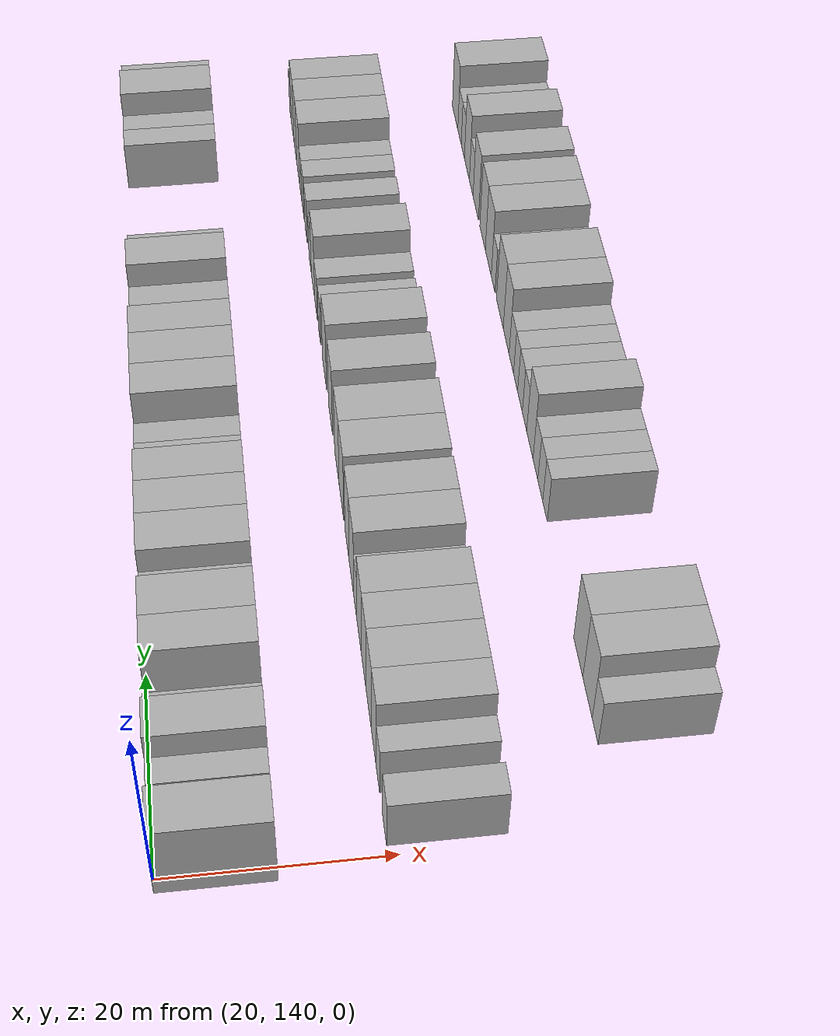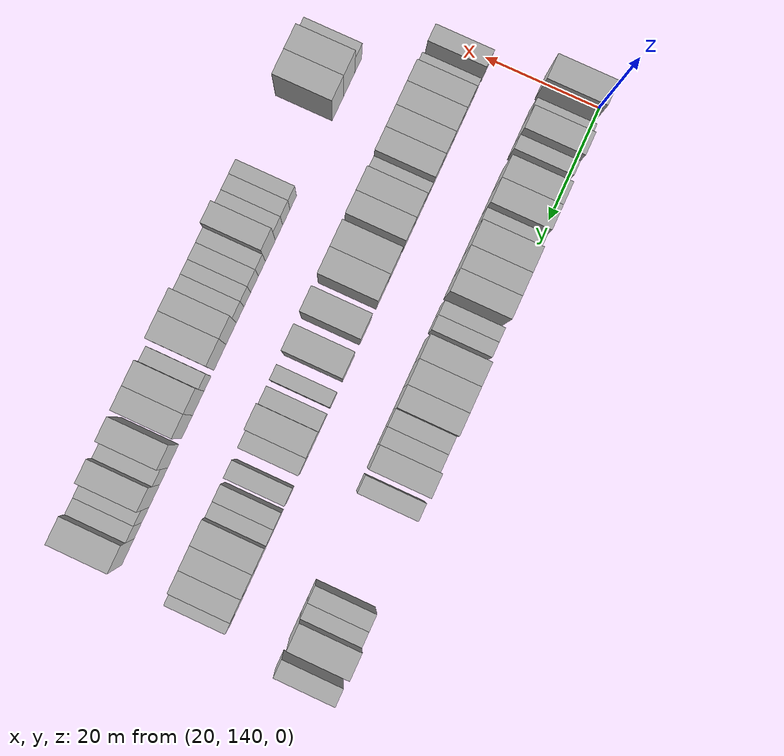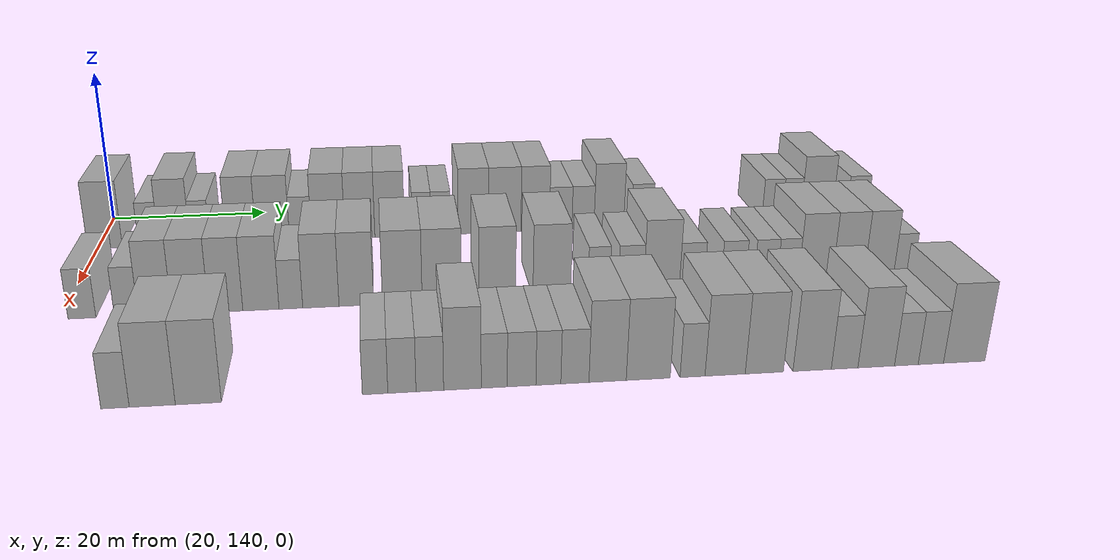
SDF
<sdf version="1.6">
 <world name="default">
  <model name="building_97">
   <static>1</static>
   <pose>25.0000 140.9379 0 0.000000 0.000000 0.000000</pose>
   <link name="link">
    <pose>0 0 4.50 0 0 0</pose>
    <collision name="collision"><geometry><box><size>10.0000 4.2865 9.0000</size></box></geometry></collision>
    <visual name="visual">
     <cast_shadows>0</cast_shadows>
     <geometry><box><size>10.0000 4.2865 9.0000</size></box></geometry>
     <material>
      <script>
       <uri>model://HANNAS_wall/materials/scripts</uri>
       <uri>model://HANNAS_wall/materials/textures</uri>
       <name>vrc/HANNAS_wall</name>
      </script>
     </material>
    </visual>
   </link>
  </model>
  <model name="building_98">
   <static>1</static>
   <pose>25.0000 146.3305 0 0.000000 0.000000 0.000000</pose>
   <link name="link">
    <pose>0 0 3.00 0 0 0</pose>
    <collision name="collision"><geometry><box><size>10.0000 2.4988 6.0000</size></box></geometry></collision>
    <visual name="visual">
     <cast_shadows>0</cast_shadows>
     <geometry><box><size>10.0000 2.4988 6.0000</size></box></geometry>
     <material>
      <script>
       <uri>model://HANNAS_wall/materials/scripts</uri>
       <uri>model://HANNAS_wall/materials/textures</uri>
       <name>vrc/HANNAS_wall</name>
      </script>
     </material>
    </visual>
   </link>
  </model>
  <model name="building_99">
   <static>1</static>
   <pose>25.0000 149.5298 0 0.000000 0.000000 0.000000</pose>
   <link name="link">
    <pose>0 0 4.50 0 0 0</pose>
    <collision name="collision"><geometry><box><size>10.0000 3.8998 9.0000</size></box></geometry></collision>
    <visual name="visual">
     <cast_shadows>0</cast_shadows>
     <geometry><box><size>10.0000 3.8998 9.0000</size></box></geometry>
     <material>
      <script>
       <uri>model://HANNAS_wall/materials/scripts</uri>
       <uri>model://HANNAS_wall/materials/textures</uri>
       <name>vrc/HANNAS_wall</name>
      </script>
     </material>
    </visual>
   </link>
  </model>
  <model name="building_100">
   <static>1</static>
   <pose>25.0000 152.7077 0 0.000000 0.000000 0.000000</pose>
   <link name="link">
    <pose>0 0 3.00 0 0 0</pose>
    <collision name="collision"><geometry><box><size>10.0000 2.4560 6.0000</size></box></geometry></collision>
    <visual name="visual">
     <cast_shadows>0</cast_shadows>
     <geometry><box><size>10.0000 2.4560 6.0000</size></box></geometry>
     <material>
      <script>
       <uri>model://HANNAS_wall/materials/scripts</uri>
       <uri>model://HANNAS_wall/materials/textures</uri>
       <name>vrc/HANNAS_wall</name>
      </script>
     </material>
    </visual>
   </link>
  </model>
  <model name="building_101">
   <static>1</static>
   <pose>25.0000 157.8451 0 0.000000 0.000000 0.000000</pose>
   <link name="link">
    <pose>0 0 4.50 0 0 0</pose>
    <collision name="collision"><geometry><box><size>10.0000 3.8187 9.0000</size></box></geometry></collision>
    <visual name="visual">
     <cast_shadows>0</cast_shadows>
     <geometry><box><size>10.0000 3.8187 9.0000</size></box></geometry>
     <material>
      <script>
       <uri>model://HANNAS_wall/materials/scripts</uri>
       <uri>model://HANNAS_wall/materials/textures</uri>
       <name>vrc/HANNAS_wall</name>
      </script>
     </material>
    </visual>
   </link>
  </model>
  <model name="building_102">
   <static>1</static>
   <pose>25.0000 161.8650 0 0.000000 0.000000 0.000000</pose>
   <link name="link">
    <pose>0 0 4.50 0 0 0</pose>
    <collision name="collision"><geometry><box><size>10.0000 4.2212 9.0000</size></box></geometry></collision>
    <visual name="visual">
     <cast_shadows>0</cast_shadows>
     <geometry><box><size>10.0000 4.2212 9.0000</size></box></geometry>
     <material>
      <script>
       <uri>model://HANNAS_wall/materials/scripts</uri>
       <uri>model://HANNAS_wall/materials/textures</uri>
       <name>vrc/HANNAS_wall</name>
      </script>
     </material>
    </visual>
   </link>
  </model>
  <model name="building_103">
   <static>1</static>
   <pose>25.0000 165.3634 0 0.000000 0.000000 0.000000</pose>
   <link name="link">
    <pose>0 0 3.00 0 0 0</pose>
    <collision name="collision"><geometry><box><size>10.0000 2.7756 6.0000</size></box></geometry></collision>
    <visual name="visual">
     <cast_shadows>0</cast_shadows>
     <geometry><box><size>10.0000 2.7756 6.0000</size></box></geometry>
     <material>
      <script>
       <uri>model://HANNAS_wall/materials/scripts</uri>
       <uri>model://HANNAS_wall/materials/textures</uri>
       <name>vrc/HANNAS_wall</name>
      </script>
     </material>
    </visual>
   </link>
  </model>
  <model name="building_104">
   <static>1</static>
   <pose>25.0000 168.8842 0 0.000000 0.000000 0.000000</pose>
   <link name="link">
    <pose>0 0 4.50 0 0 0</pose>
    <collision name="collision"><geometry><box><size>10.0000 4.2661 9.0000</size></box></geometry></collision>
    <visual name="visual">
     <cast_shadows>0</cast_shadows>
     <geometry><box><size>10.0000 4.2661 9.0000</size></box></geometry>
     <material>
      <script>
       <uri>model://HANNAS_wall/materials/scripts</uri>
       <uri>model://HANNAS_wall/materials/textures</uri>
       <name>vrc/HANNAS_wall</name>
      </script>
     </material>
    </visual>
   </link>
  </model>
  <model name="building_105">
   <static>1</static>
   <pose>25.0000 172.9350 0 0.000000 0.000000 0.000000</pose>
   <link name="link">
    <pose>0 0 4.50 0 0 0</pose>
    <collision name="collision"><geometry><box><size>10.0000 3.8354 9.0000</size></box></geometry></collision>
    <visual name="visual">
     <cast_shadows>0</cast_shadows>
     <geometry><box><size>10.0000 3.8354 9.0000</size></box></geometry>
     <material>
      <script>
       <uri>model://HANNAS_wall/materials/scripts</uri>
       <uri>model://HANNAS_wall/materials/textures</uri>
       <name>vrc/HANNAS_wall</name>
      </script>
     </material>
    </visual>
   </link>
  </model>
  <model name="building_106">
   <static>1</static>
   <pose>25.0000 176.7645 0 0.000000 0.000000 0.000000</pose>
   <link name="link">
    <pose>0 0 4.50 0 0 0</pose>
    <collision name="collision"><geometry><box><size>10.0000 3.8237 9.0000</size></box></geometry></collision>
    <visual name="visual">
     <cast_shadows>0</cast_shadows>
     <geometry><box><size>10.0000 3.8237 9.0000</size></box></geometry>
     <material>
      <script>
       <uri>model://HANNAS_wall/materials/scripts</uri>
       <uri>model://HANNAS_wall/materials/textures</uri>
       <name>vrc/HANNAS_wall</name>
      </script>
     </material>
    </visual>
   </link>
  </model>
  <model name="building_107">
   <static>1</static>
   <pose>25.0000 180.8817 0 0.000000 0.000000 0.000000</pose>
   <link name="link">
    <pose>0 0 3.00 0 0 0</pose>
    <collision name="collision"><geometry><box><size>10.0000 2.4106 6.0000</size></box></geometry></collision>
    <visual name="visual">
     <cast_shadows>0</cast_shadows>
     <geometry><box><size>10.0000 2.4106 6.0000</size></box></geometry>
     <material>
      <script>
       <uri>model://HANNAS_wall/materials/scripts</uri>
       <uri>model://HANNAS_wall/materials/textures</uri>
       <name>vrc/HANNAS_wall</name>
      </script>
     </material>
    </visual>
   </link>
  </model>
  <model name="building_108">
   <static>1</static>
   <pose>25.0000 183.3602 0 0.000000 0.000000 0.000000</pose>
   <link name="link">
    <pose>0 0 3.00 0 0 0</pose>
    <collision name="collision"><geometry><box><size>10.0000 2.5465 6.0000</size></box></geometry></collision>
    <visual name="visual">
     <cast_shadows>0</cast_shadows>
     <geometry><box><size>10.0000 2.5465 6.0000</size></box></geometry>
     <material>
      <script>
       <uri>model://HANNAS_wall/materials/scripts</uri>
       <uri>model://HANNAS_wall/materials/textures</uri>
       <name>vrc/HANNAS_wall</name>
      </script>
     </material>
    </visual>
   </link>
  </model>
  <model name="building_109">
   <static>1</static>
   <pose>25.0000 187.6360 0 0.000000 0.000000 0.000000</pose>
   <link name="link">
    <pose>0 0 4.50 0 0 0</pose>
    <collision name="collision"><geometry><box><size>10.0000 4.0050 9.0000</size></box></geometry></collision>
    <visual name="visual">
     <cast_shadows>0</cast_shadows>
     <geometry><box><size>10.0000 4.0050 9.0000</size></box></geometry>
     <material>
      <script>
       <uri>model://HANNAS_wall/materials/scripts</uri>
       <uri>model://HANNAS_wall/materials/textures</uri>
       <name>vrc/HANNAS_wall</name>
      </script>
     </material>
    </visual>
   </link>
  </model>
  <model name="building_110">
   <static>1</static>
   <pose>25.0000 191.7517 0 0.000000 0.000000 0.000000</pose>
   <link name="link">
    <pose>0 0 4.50 0 0 0</pose>
    <collision name="collision"><geometry><box><size>10.0000 4.2263 9.0000</size></box></geometry></collision>
    <visual name="visual">
     <cast_shadows>0</cast_shadows>
     <geometry><box><size>10.0000 4.2263 9.0000</size></box></geometry>
     <material>
      <script>
       <uri>model://HANNAS_wall/materials/scripts</uri>
       <uri>model://HANNAS_wall/materials/textures</uri>
       <name>vrc/HANNAS_wall</name>
      </script>
     </material>
    </visual>
   </link>
  </model>
  <model name="building_111">
   <static>1</static>
   <pose>25.0000 195.7429 0 0.000000 0.000000 0.000000</pose>
   <link name="link">
    <pose>0 0 4.50 0 0 0</pose>
    <collision name="collision"><geometry><box><size>10.0000 3.7561 9.0000</size></box></geometry></collision>
    <visual name="visual">
     <cast_shadows>0</cast_shadows>
     <geometry><box><size>10.0000 3.7561 9.0000</size></box></geometry>
     <material>
      <script>
       <uri>model://HANNAS_wall/materials/scripts</uri>
       <uri>model://HANNAS_wall/materials/textures</uri>
       <name>vrc/HANNAS_wall</name>
      </script>
     </material>
    </visual>
   </link>
  </model>
  <model name="building_112">
   <static>1</static>
   <pose>25.0000 199.1114 0 0.000000 0.000000 0.000000</pose>
   <link name="link">
    <pose>0 0 3.00 0 0 0</pose>
    <collision name="collision"><geometry><box><size>10.0000 2.9809 6.0000</size></box></geometry></collision>
    <visual name="visual">
     <cast_shadows>0</cast_shadows>
     <geometry><box><size>10.0000 2.9809 6.0000</size></box></geometry>
     <material>
      <script>
       <uri>model://HANNAS_wall/materials/scripts</uri>
       <uri>model://HANNAS_wall/materials/textures</uri>
       <name>vrc/HANNAS_wall</name>
      </script>
     </material>
    </visual>
   </link>
  </model>
  <model name="building_113">
   <static>1</static>
   <pose>25.0000 202.0716 0 0.000000 0.000000 0.000000</pose>
   <link name="link">
    <pose>0 0 3.00 0 0 0</pose>
    <collision name="collision"><geometry><box><size>10.0000 2.9397 6.0000</size></box></geometry></collision>
    <visual name="visual">
     <cast_shadows>0</cast_shadows>
     <geometry><box><size>10.0000 2.9397 6.0000</size></box></geometry>
     <material>
      <script>
       <uri>model://HANNAS_wall/materials/scripts</uri>
       <uri>model://HANNAS_wall/materials/textures</uri>
       <name>vrc/HANNAS_wall</name>
      </script>
     </material>
    </visual>
   </link>
  </model>
  <model name="building_114">
   <static>1</static>
   <pose>25.0000 205.5209 0 0.000000 0.000000 0.000000</pose>
   <link name="link">
    <pose>0 0 4.50 0 0 0</pose>
    <collision name="collision"><geometry><box><size>10.0000 3.9589 9.0000</size></box></geometry></collision>
    <visual name="visual">
     <cast_shadows>0</cast_shadows>
     <geometry><box><size>10.0000 3.9589 9.0000</size></box></geometry>
     <material>
      <script>
       <uri>model://HANNAS_wall/materials/scripts</uri>
       <uri>model://HANNAS_wall/materials/textures</uri>
       <name>vrc/HANNAS_wall</name>
      </script>
     </material>
    </visual>
   </link>
  </model>
  <model name="building_115">
   <static>1</static>
   <pose>25.0000 209.9768 0 0.000000 0.000000 0.000000</pose>
   <link name="link">
    <pose>0 0 3.00 0 0 0</pose>
    <collision name="collision"><geometry><box><size>10.0000 2.9528 6.0000</size></box></geometry></collision>
    <visual name="visual">
     <cast_shadows>0</cast_shadows>
     <geometry><box><size>10.0000 2.9528 6.0000</size></box></geometry>
     <material>
      <script>
       <uri>model://HANNAS_wall/materials/scripts</uri>
       <uri>model://HANNAS_wall/materials/textures</uri>
       <name>vrc/HANNAS_wall</name>
      </script>
     </material>
    </visual>
   </link>
  </model>
  <model name="building_116">
   <static>1</static>
   <pose>25.0000 227.6392 0 0.000000 0.000000 0.000000</pose>
   <link name="link">
    <pose>0 0 3.00 0 0 0</pose>
    <collision name="collision"><geometry><box><size>10.0000 2.7907 6.0000</size></box></geometry></collision>
    <visual name="visual">
     <cast_shadows>0</cast_shadows>
     <geometry><box><size>10.0000 2.7907 6.0000</size></box></geometry>
     <material>
      <script>
       <uri>model://HANNAS_wall/materials/scripts</uri>
       <uri>model://HANNAS_wall/materials/textures</uri>
       <name>vrc/HANNAS_wall</name>
      </script>
     </material>
    </visual>
   </link>
  </model>
  <model name="building_117">
   <static>1</static>
   <pose>25.0000 230.2897 0 0.000000 0.000000 0.000000</pose>
   <link name="link">
    <pose>0 0 3.00 0 0 0</pose>
    <collision name="collision"><geometry><box><size>10.0000 2.5103 6.0000</size></box></geometry></collision>
    <visual name="visual">
     <cast_shadows>0</cast_shadows>
     <geometry><box><size>10.0000 2.5103 6.0000</size></box></geometry>
     <material>
      <script>
       <uri>model://HANNAS_wall/materials/scripts</uri>
       <uri>model://HANNAS_wall/materials/textures</uri>
       <name>vrc/HANNAS_wall</name>
      </script>
     </material>
    </visual>
   </link>
  </model>
  <model name="building_118">
   <static>1</static>
   <pose>25.0000 233.7332 0 0.000000 0.000000 0.000000</pose>
   <link name="link">
    <pose>0 0 4.50 0 0 0</pose>
    <collision name="collision"><geometry><box><size>10.0000 4.3766 9.0000</size></box></geometry></collision>
    <visual name="visual">
     <cast_shadows>0</cast_shadows>
     <geometry><box><size>10.0000 4.3766 9.0000</size></box></geometry>
     <material>
      <script>
       <uri>model://HANNAS_wall/materials/scripts</uri>
       <uri>model://HANNAS_wall/materials/textures</uri>
       <name>vrc/HANNAS_wall</name>
      </script>
     </material>
    </visual>
   </link>
  </model>
  <model name="building_119">
   <static>1</static>
   <pose>25.0000 239.3888 0 0.000000 0.000000 0.000000</pose>
   <link name="link">
    <pose>0 0 3.00 0 0 0</pose>
    <collision name="collision"><geometry><box><size>10.0000 2.9348 6.0000</size></box></geometry></collision>
    <visual name="visual">
     <cast_shadows>0</cast_shadows>
     <geometry><box><size>10.0000 2.9348 6.0000</size></box></geometry>
     <material>
      <script>
       <uri>model://HANNAS_wall/materials/scripts</uri>
       <uri>model://HANNAS_wall/materials/textures</uri>
       <name>vrc/HANNAS_wall</name>
      </script>
     </material>
    </visual>
   </link>
  </model>
  <model name="building_206">
   <static>1</static>
   <pose>44.0000 142.4660 0 0.000000 0.000000 0.000000</pose>
   <link name="link">
    <pose>0 0 3.00 0 0 0</pose>
    <collision name="collision"><geometry><box><size>10.0000 2.9959 6.0000</size></box></geometry></collision>
    <visual name="visual">
     <cast_shadows>0</cast_shadows>
     <geometry><box><size>10.0000 2.9959 6.0000</size></box></geometry>
     <material>
      <script>
       <uri>model://HANNAS_wall/materials/scripts</uri>
       <uri>model://HANNAS_wall/materials/textures</uri>
       <name>vrc/HANNAS_wall</name>
      </script>
     </material>
    </visual>
   </link>
  </model>
  <model name="building_207">
   <static>1</static>
   <pose>44.0000 147.2470 0 0.000000 0.000000 0.000000</pose>
   <link name="link">
    <pose>0 0 3.00 0 0 0</pose>
    <collision name="collision"><geometry><box><size>10.0000 2.5660 6.0000</size></box></geometry></collision>
    <visual name="visual">
     <cast_shadows>0</cast_shadows>
     <geometry><box><size>10.0000 2.5660 6.0000</size></box></geometry>
     <material>
      <script>
       <uri>model://HANNAS_wall/materials/scripts</uri>
       <uri>model://HANNAS_wall/materials/textures</uri>
       <name>vrc/HANNAS_wall</name>
      </script>
     </material>
    </visual>
   </link>
  </model>
  <model name="building_208">
   <static>1</static>
   <pose>44.0000 150.3620 0 0.000000 0.000000 0.000000</pose>
   <link name="link">
    <pose>0 0 4.50 0 0 0</pose>
    <collision name="collision"><geometry><box><size>10.0000 3.6639 9.0000</size></box></geometry></collision>
    <visual name="visual">
     <cast_shadows>0</cast_shadows>
     <geometry><box><size>10.0000 3.6639 9.0000</size></box></geometry>
     <material>
      <script>
       <uri>model://HANNAS_wall/materials/scripts</uri>
       <uri>model://HANNAS_wall/materials/textures</uri>
       <name>vrc/HANNAS_wall</name>
      </script>
     </material>
    </visual>
   </link>
  </model>
  <model name="building_209">
   <static>1</static>
   <pose>44.0000 154.2113 0 0.000000 0.000000 0.000000</pose>
   <link name="link">
    <pose>0 0 4.50 0 0 0</pose>
    <collision name="collision"><geometry><box><size>10.0000 4.0347 9.0000</size></box></geometry></collision>
    <visual name="visual">
     <cast_shadows>0</cast_shadows>
     <geometry><box><size>10.0000 4.0347 9.0000</size></box></geometry>
     <material>
      <script>
       <uri>model://HANNAS_wall/materials/scripts</uri>
       <uri>model://HANNAS_wall/materials/textures</uri>
       <name>vrc/HANNAS_wall</name>
      </script>
     </material>
    </visual>
   </link>
  </model>
  <model name="building_210">
   <static>1</static>
   <pose>44.0000 158.0989 0 0.000000 0.000000 0.000000</pose>
   <link name="link">
    <pose>0 0 4.50 0 0 0</pose>
    <collision name="collision"><geometry><box><size>10.0000 3.7405 9.0000</size></box></geometry></collision>
    <visual name="visual">
     <cast_shadows>0</cast_shadows>
     <geometry><box><size>10.0000 3.7405 9.0000</size></box></geometry>
     <material>
      <script>
       <uri>model://HANNAS_wall/materials/scripts</uri>
       <uri>model://HANNAS_wall/materials/textures</uri>
       <name>vrc/HANNAS_wall</name>
      </script>
     </material>
    </visual>
   </link>
  </model>
  <model name="building_211">
   <static>1</static>
   <pose>44.0000 161.9685 0 0.000000 0.000000 0.000000</pose>
   <link name="link">
    <pose>0 0 4.50 0 0 0</pose>
    <collision name="collision"><geometry><box><size>10.0000 3.9987 9.0000</size></box></geometry></collision>
    <visual name="visual">
     <cast_shadows>0</cast_shadows>
     <geometry><box><size>10.0000 3.9987 9.0000</size></box></geometry>
     <material>
      <script>
       <uri>model://HANNAS_wall/materials/scripts</uri>
       <uri>model://HANNAS_wall/materials/textures</uri>
       <name>vrc/HANNAS_wall</name>
      </script>
     </material>
    </visual>
   </link>
  </model>
  <model name="building_212">
   <static>1</static>
   <pose>44.0000 165.2878 0 0.000000 0.000000 0.000000</pose>
   <link name="link">
    <pose>0 0 3.00 0 0 0</pose>
    <collision name="collision"><geometry><box><size>10.0000 2.6399 6.0000</size></box></geometry></collision>
    <visual name="visual">
     <cast_shadows>0</cast_shadows>
     <geometry><box><size>10.0000 2.6399 6.0000</size></box></geometry>
     <material>
      <script>
       <uri>model://HANNAS_wall/materials/scripts</uri>
       <uri>model://HANNAS_wall/materials/textures</uri>
       <name>vrc/HANNAS_wall</name>
      </script>
     </material>
    </visual>
   </link>
  </model>
  <model name="building_213">
   <static>1</static>
   <pose>44.0000 168.6335 0 0.000000 0.000000 0.000000</pose>
   <link name="link">
    <pose>0 0 4.50 0 0 0</pose>
    <collision name="collision"><geometry><box><size>10.0000 4.0514 9.0000</size></box></geometry></collision>
    <visual name="visual">
     <cast_shadows>0</cast_shadows>
     <geometry><box><size>10.0000 4.0514 9.0000</size></box></geometry>
     <material>
      <script>
       <uri>model://HANNAS_wall/materials/scripts</uri>
       <uri>model://HANNAS_wall/materials/textures</uri>
       <name>vrc/HANNAS_wall</name>
      </script>
     </material>
    </visual>
   </link>
  </model>
  <model name="building_214">
   <static>1</static>
   <pose>44.0000 172.6028 0 0.000000 0.000000 0.000000</pose>
   <link name="link">
    <pose>0 0 4.50 0 0 0</pose>
    <collision name="collision"><geometry><box><size>10.0000 3.8872 9.0000</size></box></geometry></collision>
    <visual name="visual">
     <cast_shadows>0</cast_shadows>
     <geometry><box><size>10.0000 3.8872 9.0000</size></box></geometry>
     <material>
      <script>
       <uri>model://HANNAS_wall/materials/scripts</uri>
       <uri>model://HANNAS_wall/materials/textures</uri>
       <name>vrc/HANNAS_wall</name>
      </script>
     </material>
    </visual>
   </link>
  </model>
  <model name="building_215">
   <static>1</static>
   <pose>44.0000 177.7916 0 0.000000 0.000000 0.000000</pose>
   <link name="link">
    <pose>0 0 4.50 0 0 0</pose>
    <collision name="collision"><geometry><box><size>10.0000 4.4904 9.0000</size></box></geometry></collision>
    <visual name="visual">
     <cast_shadows>0</cast_shadows>
     <geometry><box><size>10.0000 4.4904 9.0000</size></box></geometry>
     <material>
      <script>
       <uri>model://HANNAS_wall/materials/scripts</uri>
       <uri>model://HANNAS_wall/materials/textures</uri>
       <name>vrc/HANNAS_wall</name>
      </script>
     </material>
    </visual>
   </link>
  </model>
  <model name="building_216">
   <static>1</static>
   <pose>44.0000 182.2722 0 0.000000 0.000000 0.000000</pose>
   <link name="link">
    <pose>0 0 4.50 0 0 0</pose>
    <collision name="collision"><geometry><box><size>10.0000 4.4708 9.0000</size></box></geometry></collision>
    <visual name="visual">
     <cast_shadows>0</cast_shadows>
     <geometry><box><size>10.0000 4.4708 9.0000</size></box></geometry>
     <material>
      <script>
       <uri>model://HANNAS_wall/materials/scripts</uri>
       <uri>model://HANNAS_wall/materials/textures</uri>
       <name>vrc/HANNAS_wall</name>
      </script>
     </material>
    </visual>
   </link>
  </model>
  <model name="building_217">
   <static>1</static>
   <pose>44.0000 188.6213 0 0.000000 0.000000 0.000000</pose>
   <link name="link">
    <pose>0 0 4.50 0 0 0</pose>
    <collision name="collision"><geometry><box><size>10.0000 4.2276 9.0000</size></box></geometry></collision>
    <visual name="visual">
     <cast_shadows>0</cast_shadows>
     <geometry><box><size>10.0000 4.2276 9.0000</size></box></geometry>
     <material>
      <script>
       <uri>model://HANNAS_wall/materials/scripts</uri>
       <uri>model://HANNAS_wall/materials/textures</uri>
       <name>vrc/HANNAS_wall</name>
      </script>
     </material>
    </visual>
   </link>
  </model>
  <model name="building_218">
   <static>1</static>
   <pose>44.0000 194.9279 0 0.000000 0.000000 0.000000</pose>
   <link name="link">
    <pose>0 0 4.50 0 0 0</pose>
    <collision name="collision"><geometry><box><size>10.0000 4.3856 9.0000</size></box></geometry></collision>
    <visual name="visual">
     <cast_shadows>0</cast_shadows>
     <geometry><box><size>10.0000 4.3856 9.0000</size></box></geometry>
     <material>
      <script>
       <uri>model://HANNAS_wall/materials/scripts</uri>
       <uri>model://HANNAS_wall/materials/textures</uri>
       <name>vrc/HANNAS_wall</name>
      </script>
     </material>
    </visual>
   </link>
  </model>
  <model name="building_219">
   <static>1</static>
   <pose>44.0000 200.4010 0 0.000000 0.000000 0.000000</pose>
   <link name="link">
    <pose>0 0 3.00 0 0 0</pose>
    <collision name="collision"><geometry><box><size>10.0000 2.5605 6.0000</size></box></geometry></collision>
    <visual name="visual">
     <cast_shadows>0</cast_shadows>
     <geometry><box><size>10.0000 2.5605 6.0000</size></box></geometry>
     <material>
      <script>
       <uri>model://HANNAS_wall/materials/scripts</uri>
       <uri>model://HANNAS_wall/materials/textures</uri>
       <name>vrc/HANNAS_wall</name>
      </script>
     </material>
    </visual>
   </link>
  </model>
  <model name="building_220">
   <static>1</static>
   <pose>44.0000 204.1700 0 0.000000 0.000000 0.000000</pose>
   <link name="link">
    <pose>0 0 3.00 0 0 0</pose>
    <collision name="collision"><geometry><box><size>10.0000 2.9775 6.0000</size></box></geometry></collision>
    <visual name="visual">
     <cast_shadows>0</cast_shadows>
     <geometry><box><size>10.0000 2.9775 6.0000</size></box></geometry>
     <material>
      <script>
       <uri>model://HANNAS_wall/materials/scripts</uri>
       <uri>model://HANNAS_wall/materials/textures</uri>
       <name>vrc/HANNAS_wall</name>
      </script>
     </material>
    </visual>
   </link>
  </model>
  <model name="building_221">
   <static>1</static>
   <pose>44.0000 207.7698 0 0.000000 0.000000 0.000000</pose>
   <link name="link">
    <pose>0 0 4.50 0 0 0</pose>
    <collision name="collision"><geometry><box><size>10.0000 4.2221 9.0000</size></box></geometry></collision>
    <visual name="visual">
     <cast_shadows>0</cast_shadows>
     <geometry><box><size>10.0000 4.2221 9.0000</size></box></geometry>
     <material>
      <script>
       <uri>model://HANNAS_wall/materials/scripts</uri>
       <uri>model://HANNAS_wall/materials/textures</uri>
       <name>vrc/HANNAS_wall</name>
      </script>
     </material>
    </visual>
   </link>
  </model>
  <model name="building_222">
   <static>1</static>
   <pose>44.0000 211.3591 0 0.000000 0.000000 0.000000</pose>
   <link name="link">
    <pose>0 0 3.00 0 0 0</pose>
    <collision name="collision"><geometry><box><size>10.0000 2.9564 6.0000</size></box></geometry></collision>
    <visual name="visual">
     <cast_shadows>0</cast_shadows>
     <geometry><box><size>10.0000 2.9564 6.0000</size></box></geometry>
     <material>
      <script>
       <uri>model://HANNAS_wall/materials/scripts</uri>
       <uri>model://HANNAS_wall/materials/textures</uri>
       <name>vrc/HANNAS_wall</name>
      </script>
     </material>
    </visual>
   </link>
  </model>
  <model name="building_223">
   <static>1</static>
   <pose>44.0000 216.3031 0 0.000000 0.000000 0.000000</pose>
   <link name="link">
    <pose>0 0 3.00 0 0 0</pose>
    <collision name="collision"><geometry><box><size>10.0000 2.9315 6.0000</size></box></geometry></collision>
    <visual name="visual">
     <cast_shadows>0</cast_shadows>
     <geometry><box><size>10.0000 2.9315 6.0000</size></box></geometry>
     <material>
      <script>
       <uri>model://HANNAS_wall/materials/scripts</uri>
       <uri>model://HANNAS_wall/materials/textures</uri>
       <name>vrc/HANNAS_wall</name>
      </script>
     </material>
    </visual>
   </link>
  </model>
  <model name="building_224">
   <static>1</static>
   <pose>44.0000 220.1676 0 0.000000 0.000000 0.000000</pose>
   <link name="link">
    <pose>0 0 3.00 0 0 0</pose>
    <collision name="collision"><geometry><box><size>10.0000 2.7975 6.0000</size></box></geometry></collision>
    <visual name="visual">
     <cast_shadows>0</cast_shadows>
     <geometry><box><size>10.0000 2.7975 6.0000</size></box></geometry>
     <material>
      <script>
       <uri>model://HANNAS_wall/materials/scripts</uri>
       <uri>model://HANNAS_wall/materials/textures</uri>
       <name>vrc/HANNAS_wall</name>
      </script>
     </material>
    </visual>
   </link>
  </model>
  <model name="building_225">
   <static>1</static>
   <pose>44.0000 222.8485 0 0.000000 0.000000 0.000000</pose>
   <link name="link">
    <pose>0 0 3.00 0 0 0</pose>
    <collision name="collision"><geometry><box><size>10.0000 2.5643 6.0000</size></box></geometry></collision>
    <visual name="visual">
     <cast_shadows>0</cast_shadows>
     <geometry><box><size>10.0000 2.5643 6.0000</size></box></geometry>
     <material>
      <script>
       <uri>model://HANNAS_wall/materials/scripts</uri>
       <uri>model://HANNAS_wall/materials/textures</uri>
       <name>vrc/HANNAS_wall</name>
      </script>
     </material>
    </visual>
   </link>
  </model>
  <model name="building_226">
   <static>1</static>
   <pose>44.0000 226.1968 0 0.000000 0.000000 0.000000</pose>
   <link name="link">
    <pose>0 0 4.50 0 0 0</pose>
    <collision name="collision"><geometry><box><size>10.0000 4.1323 9.0000</size></box></geometry></collision>
    <visual name="visual">
     <cast_shadows>0</cast_shadows>
     <geometry><box><size>10.0000 4.1323 9.0000</size></box></geometry>
     <material>
      <script>
       <uri>model://HANNAS_wall/materials/scripts</uri>
       <uri>model://HANNAS_wall/materials/textures</uri>
       <name>vrc/HANNAS_wall</name>
      </script>
     </material>
    </visual>
   </link>
  </model>
  <model name="building_227">
   <static>1</static>
   <pose>44.0000 230.1955 0 0.000000 0.000000 0.000000</pose>
   <link name="link">
    <pose>0 0 4.50 0 0 0</pose>
    <collision name="collision"><geometry><box><size>10.0000 3.8650 9.0000</size></box></geometry></collision>
    <visual name="visual">
     <cast_shadows>0</cast_shadows>
     <geometry><box><size>10.0000 3.8650 9.0000</size></box></geometry>
     <material>
      <script>
       <uri>model://HANNAS_wall/materials/scripts</uri>
       <uri>model://HANNAS_wall/materials/textures</uri>
       <name>vrc/HANNAS_wall</name>
      </script>
     </material>
    </visual>
   </link>
  </model>
  <model name="building_228">
   <static>1</static>
   <pose>44.0000 233.9417 0 0.000000 0.000000 0.000000</pose>
   <link name="link">
    <pose>0 0 4.50 0 0 0</pose>
    <collision name="collision"><geometry><box><size>10.0000 3.6274 9.0000</size></box></geometry></collision>
    <visual name="visual">
     <cast_shadows>0</cast_shadows>
     <geometry><box><size>10.0000 3.6274 9.0000</size></box></geometry>
     <material>
      <script>
       <uri>model://HANNAS_wall/materials/scripts</uri>
       <uri>model://HANNAS_wall/materials/textures</uri>
       <name>vrc/HANNAS_wall</name>
      </script>
     </material>
    </visual>
   </link>
  </model>
  <model name="building_229">
   <static>1</static>
   <pose>44.0000 236.9744 0 0.000000 0.000000 0.000000</pose>
   <link name="link">
    <pose>0 0 3.00 0 0 0</pose>
    <collision name="collision"><geometry><box><size>10.0000 2.4380 6.0000</size></box></geometry></collision>
    <visual name="visual">
     <cast_shadows>0</cast_shadows>
     <geometry><box><size>10.0000 2.4380 6.0000</size></box></geometry>
     <material>
      <script>
       <uri>model://HANNAS_wall/materials/scripts</uri>
       <uri>model://HANNAS_wall/materials/textures</uri>
       <name>vrc/HANNAS_wall</name>
      </script>
     </material>
    </visual>
   </link>
  </model>
  <model name="building_324">
   <static>1</static>
   <pose>63.0000 149.8931 0 0.000000 0.000000 0.000000</pose>
   <link name="link">
    <pose>0 0 3.00 0 0 0</pose>
    <collision name="collision"><geometry><box><size>10.0000 2.6408 6.0000</size></box></geometry></collision>
    <visual name="visual">
     <cast_shadows>0</cast_shadows>
     <geometry><box><size>10.0000 2.6408 6.0000</size></box></geometry>
     <material>
      <script>
       <uri>model://HANNAS_wall/materials/scripts</uri>
       <uri>model://HANNAS_wall/materials/textures</uri>
       <name>vrc/HANNAS_wall</name>
      </script>
     </material>
    </visual>
   </link>
  </model>
  <model name="building_325">
   <static>1</static>
   <pose>63.0000 153.3627 0 0.000000 0.000000 0.000000</pose>
   <link name="link">
    <pose>0 0 4.50 0 0 0</pose>
    <collision name="collision"><geometry><box><size>10.0000 4.2984 9.0000</size></box></geometry></collision>
    <visual name="visual">
     <cast_shadows>0</cast_shadows>
     <geometry><box><size>10.0000 4.2984 9.0000</size></box></geometry>
     <material>
      <script>
       <uri>model://HANNAS_wall/materials/scripts</uri>
       <uri>model://HANNAS_wall/materials/textures</uri>
       <name>vrc/HANNAS_wall</name>
      </script>
     </material>
    </visual>
   </link>
  </model>
  <model name="building_326">
   <static>1</static>
   <pose>63.0000 157.6766 0 0.000000 0.000000 0.000000</pose>
   <link name="link">
    <pose>0 0 4.50 0 0 0</pose>
    <collision name="collision"><geometry><box><size>10.0000 4.3293 9.0000</size></box></geometry></collision>
    <visual name="visual">
     <cast_shadows>0</cast_shadows>
     <geometry><box><size>10.0000 4.3293 9.0000</size></box></geometry>
     <material>
      <script>
       <uri>model://HANNAS_wall/materials/scripts</uri>
       <uri>model://HANNAS_wall/materials/textures</uri>
       <name>vrc/HANNAS_wall</name>
      </script>
     </material>
    </visual>
   </link>
  </model>
  <model name="building_327">
   <static>1</static>
   <pose>63.0000 174.5457 0 0.000000 0.000000 0.000000</pose>
   <link name="link">
    <pose>0 0 3.00 0 0 0</pose>
    <collision name="collision"><geometry><box><size>10.0000 2.4696 6.0000</size></box></geometry></collision>
    <visual name="visual">
     <cast_shadows>0</cast_shadows>
     <geometry><box><size>10.0000 2.4696 6.0000</size></box></geometry>
     <material>
      <script>
       <uri>model://HANNAS_wall/materials/scripts</uri>
       <uri>model://HANNAS_wall/materials/textures</uri>
       <name>vrc/HANNAS_wall</name>
      </script>
     </material>
    </visual>
   </link>
  </model>
  <model name="building_328">
   <static>1</static>
   <pose>63.0000 177.1510 0 0.000000 0.000000 0.000000</pose>
   <link name="link">
    <pose>0 0 3.00 0 0 0</pose>
    <collision name="collision"><geometry><box><size>10.0000 2.7409 6.0000</size></box></geometry></collision>
    <visual name="visual">
     <cast_shadows>0</cast_shadows>
     <geometry><box><size>10.0000 2.7409 6.0000</size></box></geometry>
     <material>
      <script>
       <uri>model://HANNAS_wall/materials/scripts</uri>
       <uri>model://HANNAS_wall/materials/textures</uri>
       <name>vrc/HANNAS_wall</name>
      </script>
     </material>
    </visual>
   </link>
  </model>
  <model name="building_329">
   <static>1</static>
   <pose>63.0000 179.8724 0 0.000000 0.000000 0.000000</pose>
   <link name="link">
    <pose>0 0 3.00 0 0 0</pose>
    <collision name="collision"><geometry><box><size>10.0000 2.7020 6.0000</size></box></geometry></collision>
    <visual name="visual">
     <cast_shadows>0</cast_shadows>
     <geometry><box><size>10.0000 2.7020 6.0000</size></box></geometry>
     <material>
      <script>
       <uri>model://HANNAS_wall/materials/scripts</uri>
       <uri>model://HANNAS_wall/materials/textures</uri>
       <name>vrc/HANNAS_wall</name>
      </script>
     </material>
    </visual>
   </link>
  </model>
  <model name="building_330">
   <static>1</static>
   <pose>63.0000 183.0693 0 0.000000 0.000000 0.000000</pose>
   <link name="link">
    <pose>0 0 4.50 0 0 0</pose>
    <collision name="collision"><geometry><box><size>10.0000 3.6917 9.0000</size></box></geometry></collision>
    <visual name="visual">
     <cast_shadows>0</cast_shadows>
     <geometry><box><size>10.0000 3.6917 9.0000</size></box></geometry>
     <material>
      <script>
       <uri>model://HANNAS_wall/materials/scripts</uri>
       <uri>model://HANNAS_wall/materials/textures</uri>
       <name>vrc/HANNAS_wall</name>
      </script>
     </material>
    </visual>
   </link>
  </model>
  <model name="building_331">
   <static>1</static>
   <pose>63.0000 186.2033 0 0.000000 0.000000 0.000000</pose>
   <link name="link">
    <pose>0 0 3.00 0 0 0</pose>
    <collision name="collision"><geometry><box><size>10.0000 2.5764 6.0000</size></box></geometry></collision>
    <visual name="visual">
     <cast_shadows>0</cast_shadows>
     <geometry><box><size>10.0000 2.5764 6.0000</size></box></geometry>
     <material>
      <script>
       <uri>model://HANNAS_wall/materials/scripts</uri>
       <uri>model://HANNAS_wall/materials/textures</uri>
       <name>vrc/HANNAS_wall</name>
      </script>
     </material>
    </visual>
   </link>
  </model>
  <model name="building_332">
   <static>1</static>
   <pose>63.0000 188.9163 0 0.000000 0.000000 0.000000</pose>
   <link name="link">
    <pose>0 0 3.00 0 0 0</pose>
    <collision name="collision"><geometry><box><size>10.0000 2.8495 6.0000</size></box></geometry></collision>
    <visual name="visual">
     <cast_shadows>0</cast_shadows>
     <geometry><box><size>10.0000 2.8495 6.0000</size></box></geometry>
     <material>
      <script>
       <uri>model://HANNAS_wall/materials/scripts</uri>
       <uri>model://HANNAS_wall/materials/textures</uri>
       <name>vrc/HANNAS_wall</name>
      </script>
     </material>
    </visual>
   </link>
  </model>
  <model name="building_333">
   <static>1</static>
   <pose>63.0000 191.5873 0 0.000000 0.000000 0.000000</pose>
   <link name="link">
    <pose>0 0 3.00 0 0 0</pose>
    <collision name="collision"><geometry><box><size>10.0000 2.4926 6.0000</size></box></geometry></collision>
    <visual name="visual">
     <cast_shadows>0</cast_shadows>
     <geometry><box><size>10.0000 2.4926 6.0000</size></box></geometry>
     <material>
      <script>
       <uri>model://HANNAS_wall/materials/scripts</uri>
       <uri>model://HANNAS_wall/materials/textures</uri>
       <name>vrc/HANNAS_wall</name>
      </script>
     </material>
    </visual>
   </link>
  </model>
  <model name="building_334">
   <static>1</static>
   <pose>63.0000 194.2412 0 0.000000 0.000000 0.000000</pose>
   <link name="link">
    <pose>0 0 3.00 0 0 0</pose>
    <collision name="collision"><geometry><box><size>10.0000 2.8151 6.0000</size></box></geometry></collision>
    <visual name="visual">
     <cast_shadows>0</cast_shadows>
     <geometry><box><size>10.0000 2.8151 6.0000</size></box></geometry>
     <material>
      <script>
       <uri>model://HANNAS_wall/materials/scripts</uri>
       <uri>model://HANNAS_wall/materials/textures</uri>
       <name>vrc/HANNAS_wall</name>
      </script>
     </material>
    </visual>
   </link>
  </model>
  <model name="building_335">
   <static>1</static>
   <pose>63.0000 197.5292 0 0.000000 0.000000 0.000000</pose>
   <link name="link">
    <pose>0 0 4.50 0 0 0</pose>
    <collision name="collision"><geometry><box><size>10.0000 3.7609 9.0000</size></box></geometry></collision>
    <visual name="visual">
     <cast_shadows>0</cast_shadows>
     <geometry><box><size>10.0000 3.7609 9.0000</size></box></geometry>
     <material>
      <script>
       <uri>model://HANNAS_wall/materials/scripts</uri>
       <uri>model://HANNAS_wall/materials/textures</uri>
       <name>vrc/HANNAS_wall</name>
      </script>
     </material>
    </visual>
   </link>
  </model>
  <model name="building_336">
   <static>1</static>
   <pose>63.0000 201.6463 0 0.000000 0.000000 0.000000</pose>
   <link name="link">
    <pose>0 0 4.50 0 0 0</pose>
    <collision name="collision"><geometry><box><size>10.0000 4.4733 9.0000</size></box></geometry></collision>
    <visual name="visual">
     <cast_shadows>0</cast_shadows>
     <geometry><box><size>10.0000 4.4733 9.0000</size></box></geometry>
     <material>
      <script>
       <uri>model://HANNAS_wall/materials/scripts</uri>
       <uri>model://HANNAS_wall/materials/textures</uri>
       <name>vrc/HANNAS_wall</name>
      </script>
     </material>
    </visual>
   </link>
  </model>
  <model name="building_337">
   <static>1</static>
   <pose>63.0000 206.1596 0 0.000000 0.000000 0.000000</pose>
   <link name="link">
    <pose>0 0 3.00 0 0 0</pose>
    <collision name="collision"><geometry><box><size>10.0000 2.5532 6.0000</size></box></geometry></collision>
    <visual name="visual">
     <cast_shadows>0</cast_shadows>
     <geometry><box><size>10.0000 2.5532 6.0000</size></box></geometry>
     <material>
      <script>
       <uri>model://HANNAS_wall/materials/scripts</uri>
       <uri>model://HANNAS_wall/materials/textures</uri>
       <name>vrc/HANNAS_wall</name>
      </script>
     </material>
    </visual>
   </link>
  </model>
  <model name="building_338">
   <static>1</static>
   <pose>63.0000 209.5089 0 0.000000 0.000000 0.000000</pose>
   <link name="link">
    <pose>0 0 4.50 0 0 0</pose>
    <collision name="collision"><geometry><box><size>10.0000 4.1454 9.0000</size></box></geometry></collision>
    <visual name="visual">
     <cast_shadows>0</cast_shadows>
     <geometry><box><size>10.0000 4.1454 9.0000</size></box></geometry>
     <material>
      <script>
       <uri>model://HANNAS_wall/materials/scripts</uri>
       <uri>model://HANNAS_wall/materials/textures</uri>
       <name>vrc/HANNAS_wall</name>
      </script>
     </material>
    </visual>
   </link>
  </model>
  <model name="building_339">
   <static>1</static>
   <pose>63.0000 213.5574 0 0.000000 0.000000 0.000000</pose>
   <link name="link">
    <pose>0 0 4.50 0 0 0</pose>
    <collision name="collision"><geometry><box><size>10.0000 3.9516 9.0000</size></box></geometry></collision>
    <visual name="visual">
     <cast_shadows>0</cast_shadows>
     <geometry><box><size>10.0000 3.9516 9.0000</size></box></geometry>
     <material>
      <script>
       <uri>model://HANNAS_wall/materials/scripts</uri>
       <uri>model://HANNAS_wall/materials/textures</uri>
       <name>vrc/HANNAS_wall</name>
      </script>
     </material>
    </visual>
   </link>
  </model>
  <model name="building_340">
   <static>1</static>
   <pose>63.0000 218.5340 0 0.000000 0.000000 0.000000</pose>
   <link name="link">
    <pose>0 0 4.50 0 0 0</pose>
    <collision name="collision"><geometry><box><size>10.0000 4.0017 9.0000</size></box></geometry></collision>
    <visual name="visual">
     <cast_shadows>0</cast_shadows>
     <geometry><box><size>10.0000 4.0017 9.0000</size></box></geometry>
     <material>
      <script>
       <uri>model://HANNAS_wall/materials/scripts</uri>
       <uri>model://HANNAS_wall/materials/textures</uri>
       <name>vrc/HANNAS_wall</name>
      </script>
     </material>
    </visual>
   </link>
  </model>
  <model name="building_341">
   <static>1</static>
   <pose>63.0000 221.9353 0 0.000000 0.000000 0.000000</pose>
   <link name="link">
    <pose>0 0 3.00 0 0 0</pose>
    <collision name="collision"><geometry><box><size>10.0000 2.8008 6.0000</size></box></geometry></collision>
    <visual name="visual">
     <cast_shadows>0</cast_shadows>
     <geometry><box><size>10.0000 2.8008 6.0000</size></box></geometry>
     <material>
      <script>
       <uri>model://HANNAS_wall/materials/scripts</uri>
       <uri>model://HANNAS_wall/materials/textures</uri>
       <name>vrc/HANNAS_wall</name>
      </script>
     </material>
    </visual>
   </link>
  </model>
  <model name="building_342">
   <static>1</static>
   <pose>63.0000 225.2707 0 0.000000 0.000000 0.000000</pose>
   <link name="link">
    <pose>0 0 4.50 0 0 0</pose>
    <collision name="collision"><geometry><box><size>10.0000 3.8700 9.0000</size></box></geometry></collision>
    <visual name="visual">
     <cast_shadows>0</cast_shadows>
     <geometry><box><size>10.0000 3.8700 9.0000</size></box></geometry>
     <material>
      <script>
       <uri>model://HANNAS_wall/materials/scripts</uri>
       <uri>model://HANNAS_wall/materials/textures</uri>
       <name>vrc/HANNAS_wall</name>
      </script>
     </material>
    </visual>
   </link>
  </model>
  <model name="building_343">
   <static>1</static>
   <pose>63.0000 228.4629 0 0.000000 0.000000 0.000000</pose>
   <link name="link">
    <pose>0 0 3.00 0 0 0</pose>
    <collision name="collision"><geometry><box><size>10.0000 2.5142 6.0000</size></box></geometry></collision>
    <visual name="visual">
     <cast_shadows>0</cast_shadows>
     <geometry><box><size>10.0000 2.5142 6.0000</size></box></geometry>
     <material>
      <script>
       <uri>model://HANNAS_wall/materials/scripts</uri>
       <uri>model://HANNAS_wall/materials/textures</uri>
       <name>vrc/HANNAS_wall</name>
      </script>
     </material>
    </visual>
   </link>
  </model>
  <model name="building_344">
   <static>1</static>
   <pose>63.0000 231.0724 0 0.000000 0.000000 0.000000</pose>
   <link name="link">
    <pose>0 0 3.00 0 0 0</pose>
    <collision name="collision"><geometry><box><size>10.0000 2.7047 6.0000</size></box></geometry></collision>
    <visual name="visual">
     <cast_shadows>0</cast_shadows>
     <geometry><box><size>10.0000 2.7047 6.0000</size></box></geometry>
     <material>
      <script>
       <uri>model://HANNAS_wall/materials/scripts</uri>
       <uri>model://HANNAS_wall/materials/textures</uri>
       <name>vrc/HANNAS_wall</name>
      </script>
     </material>
    </visual>
   </link>
  </model>
  <model name="building_345">
   <static>1</static>
   <pose>63.0000 234.6497 0 0.000000 0.000000 0.000000</pose>
   <link name="link">
    <pose>0 0 4.50 0 0 0</pose>
    <collision name="collision"><geometry><box><size>10.0000 4.4500 9.0000</size></box></geometry></collision>
    <visual name="visual">
     <cast_shadows>0</cast_shadows>
     <geometry><box><size>10.0000 4.4500 9.0000</size></box></geometry>
     <material>
      <script>
       <uri>model://HANNAS_wall/materials/scripts</uri>
       <uri>model://HANNAS_wall/materials/textures</uri>
       <name>vrc/HANNAS_wall</name>
      </script>
     </material>
    </visual>
   </link>
  </model>
 </world>
</sdf>
